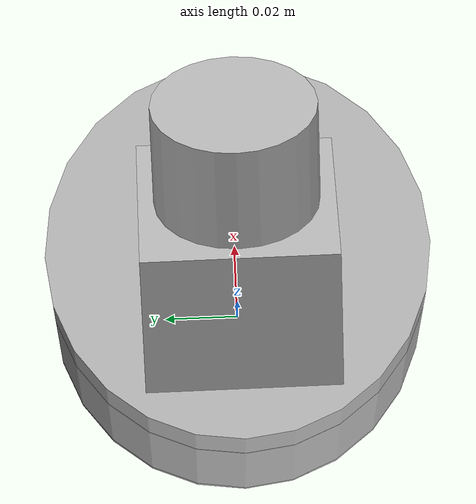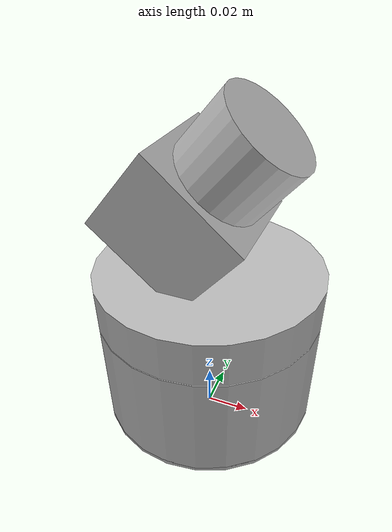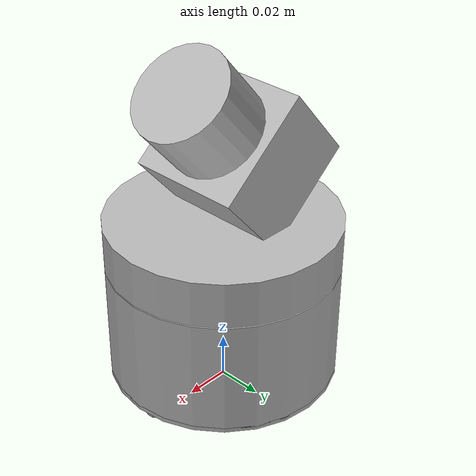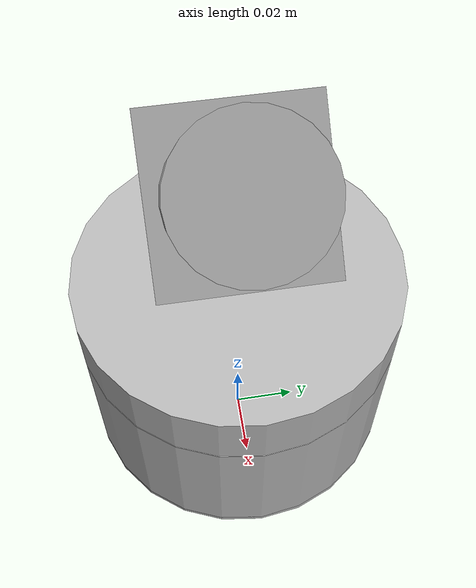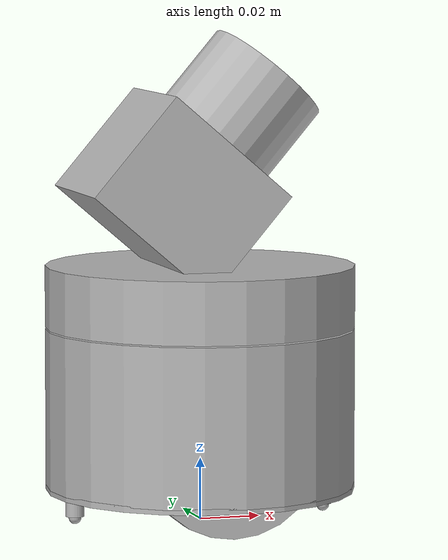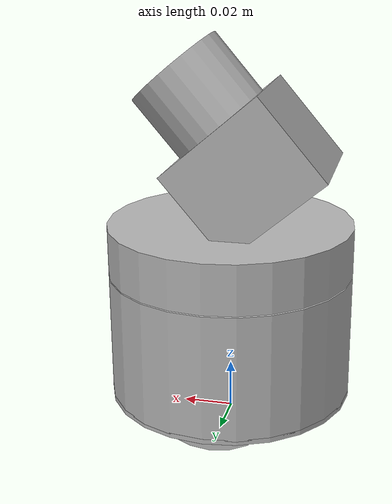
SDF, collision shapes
<?xml version='1.0'?>
<sdf version='1.4'>
  <model name="AMiRo Hokuyo Pitch">
    <static>false</static>

    <include>
        <uri>model://AMiRo</uri>
        <pose>0 0 0 0 0 0</pose>
    </include>

    <include>
      <uri>model://hokuyoCLAAS</uri>
      <pose>0 0 0.118 0 0.707 0</pose>
    </include>
    <joint name="hokuyo_joint" type="revolute">
      <child>hokuyoCLAAS::link</child>
      <parent>AMiRo::chassis</parent>
      <axis>
        <xyz>0 0 1</xyz>
        <limit>
          <upper>0</upper>
          <lower>0</lower>
        </limit>
      </axis>
    </joint>

  </model>
</sdf>

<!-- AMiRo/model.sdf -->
<sdf version='1.4'>
  <model name="AMiRo">
    <static>false</static>
      <link name='chassis'>
        <inertial>
          <mass>0.4</mass>
          <inertia>
          <ixx>0.0012</ixx>
          <ixy>0.0</ixy>
          <ixz>0.0</ixz>
          <iyy>0.0012</iyy>
          <iyz>0.0</iyz>
          <izz>0.005</izz>
          </inertia>
        </inertial>
        <velocity_decay>
          <linear>0</linear>
          <angular>0</angular>
        </velocity_decay>

        <collision name='collision_DiWheelDrive'>
          <pose>0 0 .011 0 0 0</pose>
          <geometry>
            <cylinder>
              <radius>.05</radius>
              <length>.002</length>
            </cylinder>
          </geometry>
        </collision>
        <visual name='visual_DiWheelDrive'>
          <pose>0 0 .011 0 0 0</pose>
          <geometry>
            <cylinder>
              <radius>.05</radius>
              <length>.002</length>
            </cylinder>
          </geometry>
        </visual>

        <collision name='collision_SensorRing'>
          <pose>0 0 .037 0 0 0</pose>
          <geometry>
            <cylinder>
              <radius>.05</radius>
              <length>.051</length>
            </cylinder>
          </geometry>
        </collision>
        <visual name='visual_SensorRing'>
          <pose>0 0 .037 0 0 0</pose>
          <geometry>
            <cylinder>
              <radius>.05</radius>
              <length>.051</length>
            </cylinder>
          </geometry>
        </visual>

        <collision name='collision_Hat'>
          <pose>0 0 .073 0 0 0</pose>
          <geometry>
            <cylinder>
              <radius>.05</radius>
              <length>.02</length>
            </cylinder>
          </geometry>
        </collision>
        <visual name='visual_Hat'>
          <pose>0 0 .073 0 0 0</pose>
          <geometry>
            <cylinder>
              <radius>.05</radius>
              <length>.02</length>
            </cylinder>
          </geometry>
        </visual>

        <collision name="collision_sph_caster_front">
        <pose>0.042 0 0.0025 0 0 0</pose>
        <laser_retro>0</laser_retro>
        <geometry>
          <sphere>
            <radius>0.002</radius>
          </sphere>
        </geometry>
        <surface>
          <friction>
            <ode>
              <mu>0.01</mu>
              <mu2>0.01</mu2>
              <fdir1> 0 0 0</fdir1>
              <slip1>0</slip1>
              <slip2>0</slip2>
            </ode>
          </friction>
          <bounce>
            <restitution_coefficient>0</restitution_coefficient>
            <threshold>100000</threshold>
          </bounce>
          <contact>
            <ode>
              <soft_cfm>0</soft_cfm>
              <soft_erp>0.2</soft_erp>
              <kp>1000000000000</kp>
              <kd>1</kd>
              <max_vel>100</max_vel>
              <min_depth>0.001</min_depth>
            </ode>
          </contact>
        </surface>
        </collision>
        <visual name='visual_sph_caster_front'>
          <pose>0.042 0 0.0025 0 0 0</pose>
          <geometry>
            <sphere>
              <radius>.002</radius>
            </sphere>
          </geometry>
        </visual>

        <collision name='collision_cyl_caster_front'>
          <pose>0.042 0 0.0065 0 0 0</pose>
          <geometry>
            <cylinder>
              <radius>.003</radius>
              <length>.007</length>
            </cylinder>
          </geometry>
          <surface>
            <friction>
              <ode>
                <mu>0</mu>
                <mu2>0</mu2>
              </ode>
              <bullet>
                <friction>0</friction>
                <friction2>0</friction2>
              </bullet>
            </friction>
            <contact>
              <collide_without_contact>0</collide_without_contact>
            </contact>
          </surface>
        </collision>
        <visual name='visual_cyl_caster_front'>
          <pose>0.042 0 0.0065 0 0 0</pose>
          <geometry>
            <cylinder>
              <radius>.003</radius>
              <length>.007</length>
            </cylinder>
          </geometry>
        </visual>

        <collision name='collision_sph_caster_back'>
          <pose>-0.042 0 0.0025 0 0 0</pose>
          <geometry>
            <sphere>
              <radius>.002</radius>
            </sphere>
          </geometry>
        <surface>
          <friction>
            <ode>
              <mu>0.01</mu>
              <mu2>0.01</mu2>
              <fdir1> 0 0 0</fdir1>
              <slip1>0</slip1>
              <slip2>0</slip2>
            </ode>
          </friction>
          <bounce>
            <restitution_coefficient>0</restitution_coefficient>
            <threshold>100000</threshold>
          </bounce>
          <contact>
            <ode>
              <soft_cfm>0</soft_cfm>
              <soft_erp>0.2</soft_erp>
              <kp>1000000000000</kp>
              <kd>1</kd>
              <max_vel>100</max_vel>
              <min_depth>0.001</min_depth>
            </ode>
          </contact>
        </surface>
        </collision>
        <visual name='visual_sph_caster_back'>
          <pose>-0.042 0 0.0025 0 0 0</pose>
          <geometry>
            <sphere>
              <radius>.002</radius>
            </sphere>
          </geometry>
        </visual>

        <collision name='collision_cyl_caster_back'>
          <pose>-0.042 0 0.0065 0 0 0</pose>
          <geometry>
            <cylinder>
              <radius>.003</radius>
              <length>.007</length>
            </cylinder>
          </geometry>
        </collision>
        <visual name='visual_cyl_caster_back'>
          <pose>-0.042 0 0.0065 0 0 0</pose>
          <geometry>
            <cylinder>
              <radius>.003</radius>
              <length>.007</length>
            </cylinder>
          </geometry>
        </visual>

      </link>

      <link name="left_wheel">
        <pose>0.0 0.035 0.030 0 1.5707 1.5707</pose>
        <inertial>
          <mass>0.02</mass>
          <inertia>
          <ixx>0.0000068453</ixx>
          <ixy>0.0</ixy>
          <ixz>0.0</ixz>
          <iyy>0.0000068453</iyy>
          <iyz>0.0</iyz>
          <izz>0.0000075625</izz>
          </inertia>
        </inertial>
        <collision name="collision">
          <geometry>
            <cylinder>
              <radius>.03</radius>
              <length>.006</length>
            </cylinder>
          </geometry>
        </collision>
        <visual name="visual">
          <geometry>
            <cylinder>
              <radius>.03</radius>
              <length>.006</length>
            </cylinder>
          </geometry>
        </visual>
      </link>

      <link name="right_wheel">
        <pose>0.0 -0.035 0.03 0 1.5707 1.5707</pose>
        <inertial>
          <mass>0.02</mass>
          <inertia>
          <ixx>0.0000068453</ixx>
          <ixy>0.0</ixy>
          <ixz>0.0</ixz>
          <iyy>0.0000068453</iyy>
          <iyz>0.0</iyz>
          <izz>0.0000075625</izz>
          </inertia>
        </inertial>
        <collision name="collision">
          <geometry>
            <cylinder>
              <radius>.03</radius>
              <length>.006</length>
            </cylinder>
          </geometry>
        </collision>
        <visual name="visual">
          <geometry>
            <cylinder>
              <radius>.03</radius>
              <length>.006</length>
            </cylinder>
          </geometry>
        </visual>
      </link>

      <joint type="revolute" name="left_wheel_hinge">
        <pose>0 0 0 0 0 0</pose>
        <child>left_wheel</child>
        <parent>chassis</parent>
        <axis>
          <xyz>0 1 0</xyz>
        </axis>
      </joint>
      <joint type="revolute" name="right_wheel_hinge">
        <pose>0 0 0 0 0 0</pose>
        <child>right_wheel</child>
        <parent>chassis</parent>
        <axis>
          <xyz>0 1 0</xyz>
        </axis>
      </joint>
    <plugin name="model_push" filename="libgazebo_rsb_wheel.so">
      <differentialKinematicSubscope>diffKin</differentialKinematicSubscope>
      <baseWidth>0.06</baseWidth>
      <wheelRadius>0.03</wheelRadius>
      <rightWheelMaxForceN>2.4</rightWheelMaxForceN>
      <leftWheelMaxForceN>2.4</leftWheelMaxForceN>
    </plugin>

    <link name="gps">
      <sensor name="positioning" type="gps">
        <pose>0 0 0 0 0 0</pose>
        <always_on>1</always_on>
        <update_rate>10</update_rate>
        <visualize>true</visualize>
      </sensor>
    </link>
    <plugin name="positioning" filename="libgazebo_rsb_gps.so">
      <alwaysOn>true</alwaysOn>
      <updateRate>10.0</updateRate>
      <gpsSubscope>gps</gpsSubscope>
    </plugin>
    <plugin name="odometry" filename="libgazebo_rsb_odom_amiro.so">
      <alwaysOn>true</alwaysOn>
      <updateRate>10.0</updateRate>
      <odomSubscope>odom</odomSubscope>
      <baseWidth>0.055</baseWidth>
      <kl>0.01</kl>
      <kr>0.01</kr>
    </plugin>
  </model>
</sdf>

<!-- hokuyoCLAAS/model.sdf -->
<sdf version="1.5">
  <model name="hokuyoCLAAS">
    <pose>0 0 0.035 0 0 0</pose>
    <link name="link">
        <inertial>
          <mass>0.1</mass>
          <inertia>
          <ixx>0.0000456</ixx>
          <ixy>0.0</ixy>
          <ixz>0.0</ixz>
          <iyy>0.0000456</iyy>
          <iyz>0.0</iyz>
          <izz>0.0000312</izz>
          </inertia>
        </inertial>
      <visual name="visual">
        <geometry>
          <mesh>
            <uri>model://hokuyo/meshes/hokuyo.dae</uri>
          </mesh>
        </geometry>
      </visual>
      <collision name="collision-base">
        <pose>0 0 -0.0145 0 0 0</pose>
        <geometry>
          <box>
            <size>0.05 0.05 0.041</size>
          </box>
        </geometry>
      </collision>
      <collision name="collision-top">
        <pose>0 0 0.0205 0 0 0</pose>
        <geometry>
          <cylinder>
            <radius>0.021</radius>
            <length>0.029</length>
          </cylinder>
        </geometry>
      </collision>
      <sensor name="laser" type="ray">
        <pose>0.01 0 0.0175 0 -0 0</pose>
        <ray>
          <scan>
            <horizontal>
              <samples>400</samples>
              <resolution>1</resolution>
              <min_angle>-0.707</min_angle>
              <max_angle>0.707</max_angle>
            </horizontal>
          </scan>
          <range>
            <min>0.03</min>
            <max>5</max>
            <resolution>0.01</resolution>
          </range>
          <noise>
            <type>gaussian</type>
            <mean>0.0</mean>
            <stddev>0.0</stddev>
          </noise>
        </ray>
        <plugin name="laser" filename="libgazebo_rsb_laser_inversemodel_edge.so">
          <lidarSubscope>lidar</lidarSubscope>
        </plugin>
        <always_on>1</always_on>
        <update_rate>10</update_rate>
        <visualize>true</visualize>
      </sensor>
    </link>
  </model>
</sdf>
